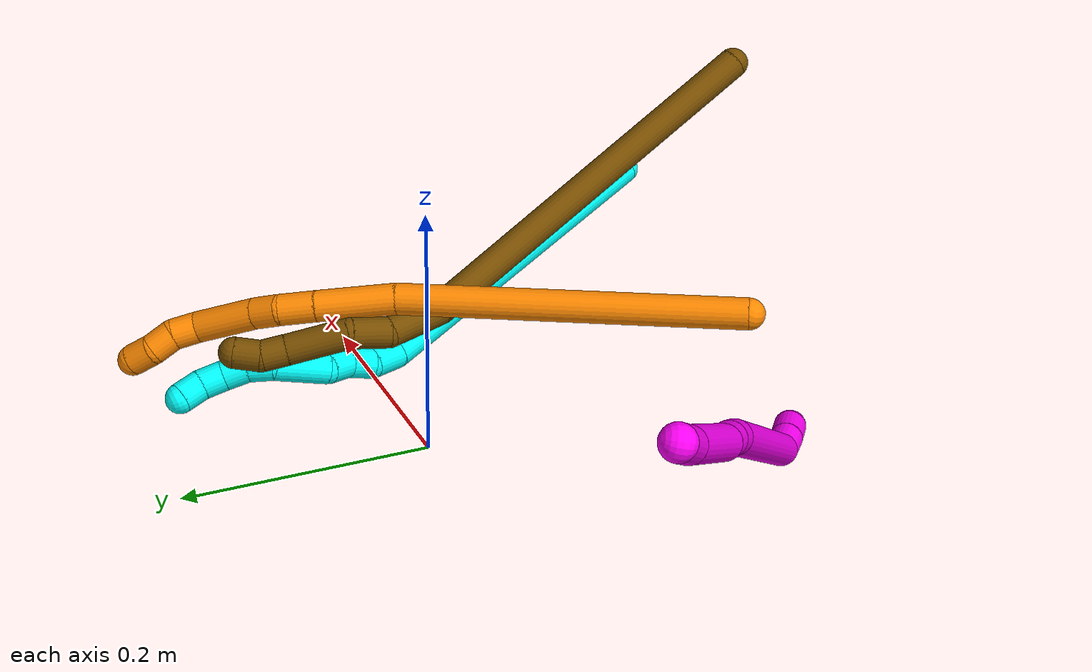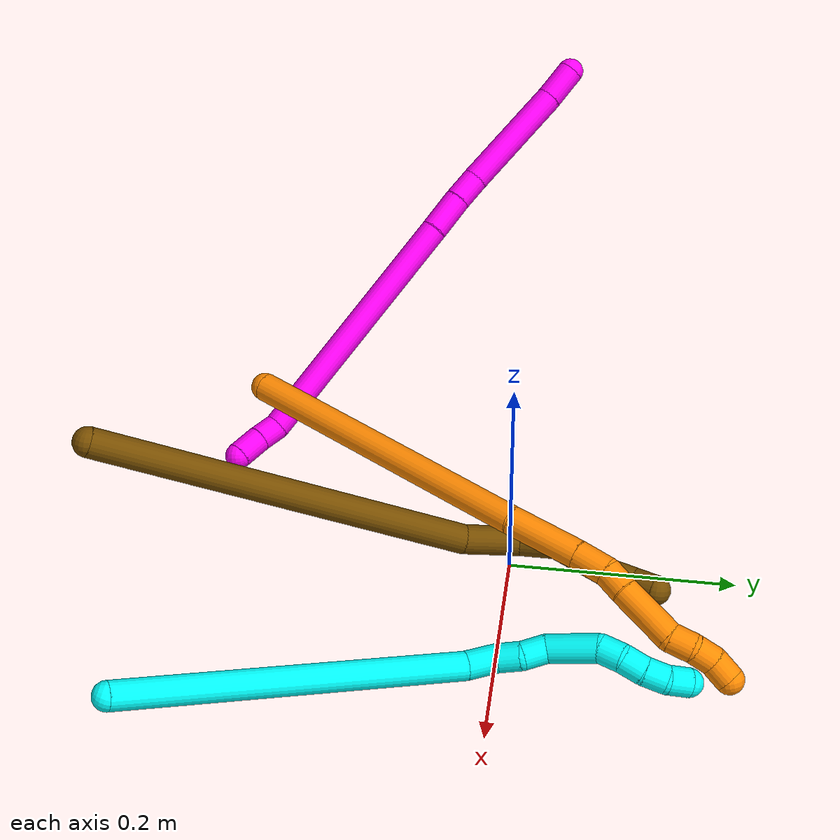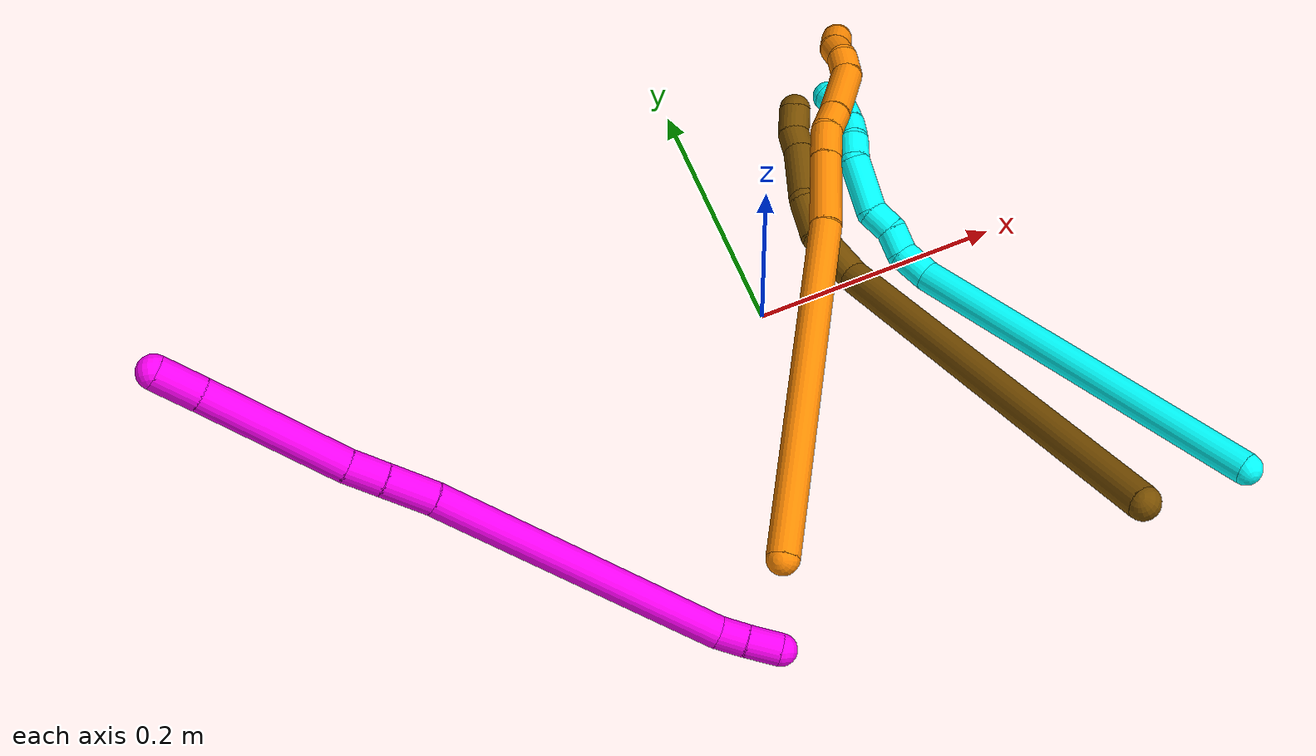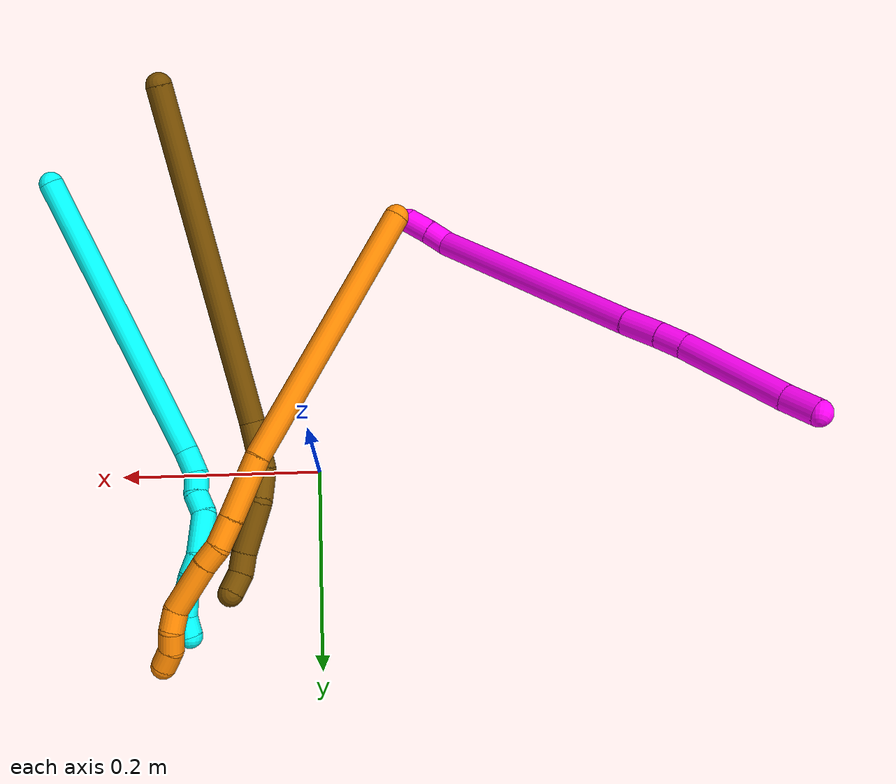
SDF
<sdf version="1.7">
 <world name="default">
  <model name="3">
   <static>0</static>
   <link name="3">
    <collision name="collision-cylinder-e_1_1_4">
     <pose>-0.061737 0.026901 -0.135378 -2.94543 -0.420601 2.27773</pose>
     <geometry><cylinder><radius>0.0125</radius><length>0.302406</length></cylinder></geometry>
     <surface>
      <friction><ode><mu>1.16</mu><mu2>1.16</mu2><slip1>0</slip1><slip2>0</slip2></ode></friction>
      <contact><ode><kp>1e+06</kp><kd>1</kd><max_vel>0</max_vel><min_depth>0.001</min_depth></ode></contact>
     </surface>
    </collision>
    <visual name="visual-cylinder-e_1_1_4">
     <pose>-0.061737 0.026901 -0.135378 -2.94543 -0.420601 2.27773</pose>
     <geometry><cylinder><radius>0.0125</radius><length>0.302406</length></cylinder></geometry>
     <material><ambient>0.003922 1 0.996078 1</ambient></material>
    </visual>
    <collision name="collision-cylinder-e_2_4_5">
     <pose>-0.127552 0.059668 -0.282516 -2.67899 -0.300785 1.14347</pose>
     <geometry><cylinder><radius>0.0125</radius><length>0.027519</length></cylinder></geometry>
     <surface>
      <friction><ode><mu>1.16</mu><mu2>1.16</mu2><slip1>0</slip1><slip2>0</slip2></ode></friction>
      <contact><ode><kp>1e+06</kp><kd>1</kd><max_vel>0</max_vel><min_depth>0.001</min_depth></ode></contact>
     </surface>
    </collision>
    <visual name="visual-cylinder-e_2_4_5">
     <pose>-0.127552 0.059668 -0.282516 -2.67899 -0.300785 1.14347</pose>
     <geometry><cylinder><radius>0.0125</radius><length>0.027519</length></cylinder></geometry>
     <material><ambient>0.003922 1 0.996078 1</ambient></material>
    </visual>
    <collision name="collision-cylinder-e_3_5_6">
     <pose>-0.130274 0.07104 -0.303441 -2.60047 0.126007 -0.447296</pose>
     <geometry><cylinder><radius>0.0125</radius><length>0.021557</length></cylinder></geometry>
     <surface>
      <friction><ode><mu>1.16</mu><mu2>1.16</mu2><slip1>0</slip1><slip2>0</slip2></ode></friction>
      <contact><ode><kp>1e+06</kp><kd>1</kd><max_vel>0</max_vel><min_depth>0.001</min_depth></ode></contact>
     </surface>
    </collision>
    <visual name="visual-cylinder-e_3_5_6">
     <pose>-0.130274 0.07104 -0.303441 -2.60047 0.126007 -0.447296</pose>
     <geometry><cylinder><radius>0.0125</radius><length>0.021557</length></cylinder></geometry>
     <material><ambient>0.003922 1 0.996078 1</ambient></material>
    </visual>
    <collision name="collision-cylinder-e_4_6_7">
     <pose>-0.131926 0.08194 -0.321656 -2.60429 -0.278089 0.940589</pose>
     <geometry><cylinder><radius>0.0125</radius><length>0.021911</length></cylinder></geometry>
     <surface>
      <friction><ode><mu>1.16</mu><mu2>1.16</mu2><slip1>0</slip1><slip2>0</slip2></ode></friction>
      <contact><ode><kp>1e+06</kp><kd>1</kd><max_vel>0</max_vel><min_depth>0.001</min_depth></ode></contact>
     </surface>
    </collision>
    <visual name="visual-cylinder-e_4_6_7">
     <pose>-0.131926 0.08194 -0.321656 -2.60429 -0.278089 0.940589</pose>
     <geometry><cylinder><radius>0.0125</radius><length>0.021911</length></cylinder></geometry>
     <material><ambient>0.003922 1 0.996078 1</ambient></material>
    </visual>
    <collision name="collision-cylinder-e_5_7_8">
     <pose>-0.129969 0.098059 -0.350254 -2.63971 0.219076 -0.810546</pose>
     <geometry><cylinder><radius>0.0125</radius><length>0.045687</length></cylinder></geometry>
     <surface>
      <friction><ode><mu>1.16</mu><mu2>1.16</mu2><slip1>0</slip1><slip2>0</slip2></ode></friction>
      <contact><ode><kp>1e+06</kp><kd>1</kd><max_vel>0</max_vel><min_depth>0.001</min_depth></ode></contact>
     </surface>
    </collision>
    <visual name="visual-cylinder-e_5_7_8">
     <pose>-0.129969 0.098059 -0.350254 -2.63971 0.219076 -0.810546</pose>
     <geometry><cylinder><radius>0.0125</radius><length>0.045687</length></cylinder></geometry>
     <material><ambient>0.003922 1 0.996078 1</ambient></material>
    </visual>
    <collision name="collision-cylinder-e_6_8_9">
     <pose>-0.120952 0.109809 -0.379103 -3.03204 0.408707 -2.62429</pose>
     <geometry><cylinder><radius>0.0125</radius><length>0.020394</length></cylinder></geometry>
     <surface>
      <friction><ode><mu>1.16</mu><mu2>1.16</mu2><slip1>0</slip1><slip2>0</slip2></ode></friction>
      <contact><ode><kp>1e+06</kp><kd>1</kd><max_vel>0</max_vel><min_depth>0.001</min_depth></ode></contact>
     </surface>
    </collision>
    <visual name="visual-cylinder-e_6_8_9">
     <pose>-0.120952 0.109809 -0.379103 -3.03204 0.408707 -2.62429</pose>
     <geometry><cylinder><radius>0.0125</radius><length>0.020394</length></cylinder></geometry>
     <material><ambient>0.003922 1 0.996078 1</ambient></material>
    </visual>
    <collision name="collision-cylinder-e_7_9_10">
     <pose>-0.114624 0.109588 -0.398258 3.01607 0.225199 2.12707</pose>
     <geometry><cylinder><radius>0.0125</radius><length>0.020378</length></cylinder></geometry>
     <surface>
      <friction><ode><mu>1.16</mu><mu2>1.16</mu2><slip1>0</slip1><slip2>0</slip2></ode></friction>
      <contact><ode><kp>1e+06</kp><kd>1</kd><max_vel>0</max_vel><min_depth>0.001</min_depth></ode></contact>
     </surface>
    </collision>
    <visual name="visual-cylinder-e_7_9_10">
     <pose>-0.114624 0.109588 -0.398258 3.01607 0.225199 2.12707</pose>
     <geometry><cylinder><radius>0.0125</radius><length>0.020378</length></cylinder></geometry>
     <material><ambient>0.003922 1 0.996078 1</ambient></material>
    </visual>
    <collision name="collision-cylinder-e_8_10_11">
     <pose>-0.111482 0.108258 -0.41812 3.1329 0.086389 2.94111</pose>
     <geometry><cylinder><radius>0.0125</radius><length>0.020095</length></cylinder></geometry>
     <surface>
      <friction><ode><mu>1.16</mu><mu2>1.16</mu2><slip1>0</slip1><slip2>0</slip2></ode></friction>
      <contact><ode><kp>1e+06</kp><kd>1</kd><max_vel>0</max_vel><min_depth>0.001</min_depth></ode></contact>
     </surface>
    </collision>
    <visual name="visual-cylinder-e_8_10_11">
     <pose>-0.111482 0.108258 -0.41812 3.1329 0.086389 2.94111</pose>
     <geometry><cylinder><radius>0.0125</radius><length>0.020095</length></cylinder></geometry>
     <material><ambient>0.003922 1 0.996078 1</ambient></material>
    </visual>
    <collision name="collision-cylinder-e_9_11_2">
     <pose>-0.113032 0.108838 -0.437839 -3.07294 -0.243431 2.59418</pose>
     <geometry><cylinder><radius>0.0125</radius><length>0.020055</length></cylinder></geometry>
     <surface>
      <friction><ode><mu>1.16</mu><mu2>1.16</mu2><slip1>0</slip1><slip2>0</slip2></ode></friction>
      <contact><ode><kp>1e+06</kp><kd>1</kd><max_vel>0</max_vel><min_depth>0.001</min_depth></ode></contact>
     </surface>
    </collision>
    <visual name="visual-cylinder-e_9_11_2">
     <pose>-0.113032 0.108838 -0.437839 -3.07294 -0.243431 2.59418</pose>
     <geometry><cylinder><radius>0.0125</radius><length>0.020055</length></cylinder></geometry>
     <material><ambient>0.003922 1 0.996078 1</ambient></material>
    </visual>
    <collision name="collision-sphere-2">
     <pose>-0.115449 0.109506 -0.447548 0 -0 0</pose>
     <geometry><sphere><radius>0.0125</radius></sphere></geometry>
     <surface>
      <friction><ode><mu>1.16</mu><mu2>1.16</mu2><slip1>0</slip1><slip2>0</slip2></ode></friction>
      <contact><ode><kp>1e+06</kp><kd>1</kd><max_vel>0</max_vel><min_depth>0.001</min_depth></ode></contact>
     </surface>
    </collision>
    <visual name="visual-sphere-2">
     <pose>-0.115449 0.109506 -0.447548 0 -0 0</pose>
     <geometry><sphere><radius>0.0125</radius></sphere></geometry>
     <material><ambient>0.003922 1 0.996078 1</ambient></material>
    </visual>
    <collision name="collision-sphere-11">
     <pose>-0.110615 0.108171 -0.42813 0 -0 0</pose>
     <geometry><sphere><radius>0.0125</radius></sphere></geometry>
     <surface>
      <friction><ode><mu>1.16</mu><mu2>1.16</mu2><slip1>0</slip1><slip2>0</slip2></ode></friction>
      <contact><ode><kp>1e+06</kp><kd>1</kd><max_vel>0</max_vel><min_depth>0.001</min_depth></ode></contact>
     </surface>
    </collision>
    <visual name="visual-sphere-11">
     <pose>-0.110615 0.108171 -0.42813 0 -0 0</pose>
     <geometry><sphere><radius>0.0125</radius></sphere></geometry>
     <material><ambient>0.003922 1 0.996078 1</ambient></material>
    </visual>
    <collision name="collision-sphere-10">
     <pose>-0.112349 0.108345 -0.408111 0 -0 0</pose>
     <geometry><sphere><radius>0.0125</radius></sphere></geometry>
     <surface>
      <friction><ode><mu>1.16</mu><mu2>1.16</mu2><slip1>0</slip1><slip2>0</slip2></ode></friction>
      <contact><ode><kp>1e+06</kp><kd>1</kd><max_vel>0</max_vel><min_depth>0.001</min_depth></ode></contact>
     </surface>
    </collision>
    <visual name="visual-sphere-10">
     <pose>-0.112349 0.108345 -0.408111 0 -0 0</pose>
     <geometry><sphere><radius>0.0125</radius></sphere></geometry>
     <material><ambient>0.003922 1 0.996078 1</ambient></material>
    </visual>
    <collision name="collision-sphere-9">
     <pose>-0.1169 0.110832 -0.388404 0 -0 0</pose>
     <geometry><sphere><radius>0.0125</radius></sphere></geometry>
     <surface>
      <friction><ode><mu>1.16</mu><mu2>1.16</mu2><slip1>0</slip1><slip2>0</slip2></ode></friction>
      <contact><ode><kp>1e+06</kp><kd>1</kd><max_vel>0</max_vel><min_depth>0.001</min_depth></ode></contact>
     </surface>
    </collision>
    <visual name="visual-sphere-9">
     <pose>-0.1169 0.110832 -0.388404 0 -0 0</pose>
     <geometry><sphere><radius>0.0125</radius></sphere></geometry>
     <material><ambient>0.003922 1 0.996078 1</ambient></material>
    </visual>
    <collision name="collision-sphere-4">
     <pose>-0.123475 0.053803 -0.270755 0 -0 0</pose>
     <geometry><sphere><radius>0.0125</radius></sphere></geometry>
     <surface>
      <friction><ode><mu>1.16</mu><mu2>1.16</mu2><slip1>0</slip1><slip2>0</slip2></ode></friction>
      <contact><ode><kp>1e+06</kp><kd>1</kd><max_vel>0</max_vel><min_depth>0.001</min_depth></ode></contact>
     </surface>
    </collision>
    <visual name="visual-sphere-4">
     <pose>-0.123475 0.053803 -0.270755 0 -0 0</pose>
     <geometry><sphere><radius>0.0125</radius></sphere></geometry>
     <material><ambient>0.003922 1 0.996078 1</ambient></material>
    </visual>
    <collision name="collision-sphere-1">
     <geometry><sphere><radius>0.0125</radius></sphere></geometry>
     <surface>
      <friction><ode><mu>1.16</mu><mu2>1.16</mu2><slip1>0</slip1><slip2>0</slip2></ode></friction>
      <contact><ode><kp>1e+06</kp><kd>1</kd><max_vel>0</max_vel><min_depth>0.001</min_depth></ode></contact>
     </surface>
    </collision>
    <visual name="visual-sphere-1">
     <geometry><sphere><radius>0.0125</radius></sphere></geometry>
     <material><ambient>0.003922 1 0.996078 1</ambient></material>
    </visual>
    <collision name="collision-sphere-8">
     <pose>-0.125005 0.108785 -0.369802 0 -0 0</pose>
     <geometry><sphere><radius>0.0125</radius></sphere></geometry>
     <surface>
      <friction><ode><mu>1.16</mu><mu2>1.16</mu2><slip1>0</slip1><slip2>0</slip2></ode></friction>
      <contact><ode><kp>1e+06</kp><kd>1</kd><max_vel>0</max_vel><min_depth>0.001</min_depth></ode></contact>
     </surface>
    </collision>
    <visual name="visual-sphere-8">
     <pose>-0.125005 0.108785 -0.369802 0 -0 0</pose>
     <geometry><sphere><radius>0.0125</radius></sphere></geometry>
     <material><ambient>0.003922 1 0.996078 1</ambient></material>
    </visual>
    <collision name="collision-sphere-5">
     <pose>-0.131628 0.065532 -0.294276 0 -0 0</pose>
     <geometry><sphere><radius>0.0125</radius></sphere></geometry>
     <surface>
      <friction><ode><mu>1.16</mu><mu2>1.16</mu2><slip1>0</slip1><slip2>0</slip2></ode></friction>
      <contact><ode><kp>1e+06</kp><kd>1</kd><max_vel>0</max_vel><min_depth>0.001</min_depth></ode></contact>
     </surface>
    </collision>
    <visual name="visual-sphere-5">
     <pose>-0.131628 0.065532 -0.294276 0 -0 0</pose>
     <geometry><sphere><radius>0.0125</radius></sphere></geometry>
     <material><ambient>0.003922 1 0.996078 1</ambient></material>
    </visual>
    <collision name="collision-sphere-6">
     <pose>-0.128919 0.076548 -0.312606 0 -0 0</pose>
     <geometry><sphere><radius>0.0125</radius></sphere></geometry>
     <surface>
      <friction><ode><mu>1.16</mu><mu2>1.16</mu2><slip1>0</slip1><slip2>0</slip2></ode></friction>
      <contact><ode><kp>1e+06</kp><kd>1</kd><max_vel>0</max_vel><min_depth>0.001</min_depth></ode></contact>
     </surface>
    </collision>
    <visual name="visual-sphere-6">
     <pose>-0.128919 0.076548 -0.312606 0 -0 0</pose>
     <geometry><sphere><radius>0.0125</radius></sphere></geometry>
     <material><ambient>0.003922 1 0.996078 1</ambient></material>
    </visual>
    <collision name="collision-sphere-7">
     <pose>-0.134934 0.087332 -0.330707 0 -0 0</pose>
     <geometry><sphere><radius>0.0125</radius></sphere></geometry>
     <surface>
      <friction><ode><mu>1.16</mu><mu2>1.16</mu2><slip1>0</slip1><slip2>0</slip2></ode></friction>
      <contact><ode><kp>1e+06</kp><kd>1</kd><max_vel>0</max_vel><min_depth>0.001</min_depth></ode></contact>
     </surface>
    </collision>
    <visual name="visual-sphere-7">
     <pose>-0.134934 0.087332 -0.330707 0 -0 0</pose>
     <geometry><sphere><radius>0.0125</radius></sphere></geometry>
     <material><ambient>0.003922 1 0.996078 1</ambient></material>
    </visual>
    <inertial>
     <pose>-0.086252 0.052829 -0.222668 0 -0 0</pose>
     <mass>0.5</mass>
     <inertia>
      <ixx>0.000229</ixx>
      <ixy>0</ixy>
      <ixz>0</ixz>
      <iyy>0.003227</iyy>
      <iyz>0</iyz>
      <izz>0.000489</izz>
     </inertia>
    </inertial>
   </link>
   <pose>0.262472 -0.288504 0.080603 1.24943 -0.292055 0.073301</pose>
  </model>
  <model name="10">
   <static>0</static>
   <link name="10">
    <collision name="collision-cylinder-e_1_1_4">
     <pose>-0.005451 0.010828 -0.004735 -1.983 -0.432194 0.647545</pose>
     <geometry><cylinder><radius>0.0125</radius><length>0.026029</length></cylinder></geometry>
     <surface>
      <friction><ode><mu>1.16</mu><mu2>1.16</mu2><slip1>0</slip1><slip2>0</slip2></ode></friction>
      <contact><ode><kp>1e+06</kp><kd>1</kd><max_vel>0</max_vel><min_depth>0.001</min_depth></ode></contact>
     </surface>
    </collision>
    <visual name="visual-cylinder-e_1_1_4">
     <pose>-0.005451 0.010828 -0.004735 -1.983 -0.432194 0.647545</pose>
     <geometry><cylinder><radius>0.0125</radius><length>0.026029</length></cylinder></geometry>
     <material><ambient>1 0 0.964706 1</ambient></material>
    </visual>
    <collision name="collision-cylinder-e_2_4_5">
     <pose>-0.016096 0.030688 -0.014173 -2.05098 -0.471599 0.75419</pose>
     <geometry><cylinder><radius>0.0125</radius><length>0.022863</length></cylinder></geometry>
     <surface>
      <friction><ode><mu>1.16</mu><mu2>1.16</mu2><slip1>0</slip1><slip2>0</slip2></ode></friction>
      <contact><ode><kp>1e+06</kp><kd>1</kd><max_vel>0</max_vel><min_depth>0.001</min_depth></ode></contact>
     </surface>
    </collision>
    <visual name="visual-cylinder-e_2_4_5">
     <pose>-0.016096 0.030688 -0.014173 -2.05098 -0.471599 0.75419</pose>
     <geometry><cylinder><radius>0.0125</radius><length>0.022863</length></cylinder></geometry>
     <material><ambient>1 0 0.964706 1</ambient></material>
    </visual>
    <collision name="collision-cylinder-e_3_5_6">
     <pose>-0.024485 0.14683 -0.07444 -2.04933 -0.026473 0.043552</pose>
     <geometry><cylinder><radius>0.0125</radius><length>0.241412</length></cylinder></geometry>
     <surface>
      <friction><ode><mu>1.16</mu><mu2>1.16</mu2><slip1>0</slip1><slip2>0</slip2></ode></friction>
      <contact><ode><kp>1e+06</kp><kd>1</kd><max_vel>0</max_vel><min_depth>0.001</min_depth></ode></contact>
     </surface>
    </collision>
    <visual name="visual-cylinder-e_3_5_6">
     <pose>-0.024485 0.14683 -0.07444 -2.04933 -0.026473 0.043552</pose>
     <geometry><cylinder><radius>0.0125</radius><length>0.241412</length></cylinder></geometry>
     <material><ambient>1 0 0.964706 1</ambient></material>
    </visual>
    <collision name="collision-cylinder-e_4_6_7">
     <pose>-0.029381 0.271209 -0.137689 -1.98955 -0.089785 0.13811</pose>
     <geometry><cylinder><radius>0.0125</radius><length>0.037956</length></cylinder></geometry>
     <surface>
      <friction><ode><mu>1.16</mu><mu2>1.16</mu2><slip1>0</slip1><slip2>0</slip2></ode></friction>
      <contact><ode><kp>1e+06</kp><kd>1</kd><max_vel>0</max_vel><min_depth>0.001</min_depth></ode></contact>
     </surface>
    </collision>
    <visual name="visual-cylinder-e_4_6_7">
     <pose>-0.029381 0.271209 -0.137689 -1.98955 -0.089785 0.13811</pose>
     <geometry><cylinder><radius>0.0125</radius><length>0.037956</length></cylinder></geometry>
     <material><ambient>1 0 0.964706 1</ambient></material>
    </visual>
    <collision name="collision-cylinder-e_5_7_8">
     <pose>-0.033053 0.300862 -0.151136 -2.00622 -0.143242 0.224061</pose>
     <geometry><cylinder><radius>0.0125</radius><length>0.027602</length></cylinder></geometry>
     <surface>
      <friction><ode><mu>1.16</mu><mu2>1.16</mu2><slip1>0</slip1><slip2>0</slip2></ode></friction>
      <contact><ode><kp>1e+06</kp><kd>1</kd><max_vel>0</max_vel><min_depth>0.001</min_depth></ode></contact>
     </surface>
    </collision>
    <visual name="visual-cylinder-e_5_7_8">
     <pose>-0.033053 0.300862 -0.151136 -2.00622 -0.143242 0.224061</pose>
     <geometry><cylinder><radius>0.0125</radius><length>0.027602</length></cylinder></geometry>
     <material><ambient>1 0 0.964706 1</ambient></material>
    </visual>
    <collision name="collision-cylinder-e_6_8_9">
     <pose>-0.039561 0.360976 -0.183888 -2.08546 -0.082571 0.141397</pose>
     <geometry><cylinder><radius>0.0125</radius><length>0.110038</length></cylinder></geometry>
     <surface>
      <friction><ode><mu>1.16</mu><mu2>1.16</mu2><slip1>0</slip1><slip2>0</slip2></ode></friction>
      <contact><ode><kp>1e+06</kp><kd>1</kd><max_vel>0</max_vel><min_depth>0.001</min_depth></ode></contact>
     </surface>
    </collision>
    <visual name="visual-cylinder-e_6_8_9">
     <pose>-0.039561 0.360976 -0.183888 -2.08546 -0.082571 0.141397</pose>
     <geometry><cylinder><radius>0.0125</radius><length>0.110038</length></cylinder></geometry>
     <material><ambient>1 0 0.964706 1</ambient></material>
    </visual>
    <collision name="collision-cylinder-e_7_9_2">
     <pose>-0.044494 0.423788 -0.218816 -2.05524 -0.023171 0.038374</pose>
     <geometry><cylinder><radius>0.0125</radius><length>0.0341</length></cylinder></geometry>
     <surface>
      <friction><ode><mu>1.16</mu><mu2>1.16</mu2><slip1>0</slip1><slip2>0</slip2></ode></friction>
      <contact><ode><kp>1e+06</kp><kd>1</kd><max_vel>0</max_vel><min_depth>0.001</min_depth></ode></contact>
     </surface>
    </collision>
    <visual name="visual-cylinder-e_7_9_2">
     <pose>-0.044494 0.423788 -0.218816 -2.05524 -0.023171 0.038374</pose>
     <geometry><cylinder><radius>0.0125</radius><length>0.0341</length></cylinder></geometry>
     <material><ambient>1 0 0.964706 1</ambient></material>
    </visual>
    <collision name="collision-sphere-2">
     <pose>-0.044889 0.438872 -0.226755 0 -0 0</pose>
     <geometry><sphere><radius>0.0125</radius></sphere></geometry>
     <surface>
      <friction><ode><mu>1.16</mu><mu2>1.16</mu2><slip1>0</slip1><slip2>0</slip2></ode></friction>
      <contact><ode><kp>1e+06</kp><kd>1</kd><max_vel>0</max_vel><min_depth>0.001</min_depth></ode></contact>
     </surface>
    </collision>
    <visual name="visual-sphere-2">
     <pose>-0.044889 0.438872 -0.226755 0 -0 0</pose>
     <geometry><sphere><radius>0.0125</radius></sphere></geometry>
     <material><ambient>1 0 0.964706 1</ambient></material>
    </visual>
    <collision name="collision-sphere-9">
     <pose>-0.044099 0.408704 -0.210878 0 -0 0</pose>
     <geometry><sphere><radius>0.0125</radius></sphere></geometry>
     <surface>
      <friction><ode><mu>1.16</mu><mu2>1.16</mu2><slip1>0</slip1><slip2>0</slip2></ode></friction>
      <contact><ode><kp>1e+06</kp><kd>1</kd><max_vel>0</max_vel><min_depth>0.001</min_depth></ode></contact>
     </surface>
    </collision>
    <visual name="visual-sphere-9">
     <pose>-0.044099 0.408704 -0.210878 0 -0 0</pose>
     <geometry><sphere><radius>0.0125</radius></sphere></geometry>
     <material><ambient>1 0 0.964706 1</ambient></material>
    </visual>
    <collision name="collision-sphere-4">
     <pose>-0.010903 0.021656 -0.009469 0 -0 0</pose>
     <geometry><sphere><radius>0.0125</radius></sphere></geometry>
     <surface>
      <friction><ode><mu>1.16</mu><mu2>1.16</mu2><slip1>0</slip1><slip2>0</slip2></ode></friction>
      <contact><ode><kp>1e+06</kp><kd>1</kd><max_vel>0</max_vel><min_depth>0.001</min_depth></ode></contact>
     </surface>
    </collision>
    <visual name="visual-sphere-4">
     <pose>-0.010903 0.021656 -0.009469 0 -0 0</pose>
     <geometry><sphere><radius>0.0125</radius></sphere></geometry>
     <material><ambient>1 0 0.964706 1</ambient></material>
    </visual>
    <collision name="collision-sphere-1">
     <geometry><sphere><radius>0.0125</radius></sphere></geometry>
     <surface>
      <friction><ode><mu>1.16</mu><mu2>1.16</mu2><slip1>0</slip1><slip2>0</slip2></ode></friction>
      <contact><ode><kp>1e+06</kp><kd>1</kd><max_vel>0</max_vel><min_depth>0.001</min_depth></ode></contact>
     </surface>
    </collision>
    <visual name="visual-sphere-1">
     <geometry><sphere><radius>0.0125</radius></sphere></geometry>
     <material><ambient>1 0 0.964706 1</ambient></material>
    </visual>
    <collision name="collision-sphere-8">
     <pose>-0.035023 0.313247 -0.156897 0 -0 0</pose>
     <geometry><sphere><radius>0.0125</radius></sphere></geometry>
     <surface>
      <friction><ode><mu>1.16</mu><mu2>1.16</mu2><slip1>0</slip1><slip2>0</slip2></ode></friction>
      <contact><ode><kp>1e+06</kp><kd>1</kd><max_vel>0</max_vel><min_depth>0.001</min_depth></ode></contact>
     </surface>
    </collision>
    <visual name="visual-sphere-8">
     <pose>-0.035023 0.313247 -0.156897 0 -0 0</pose>
     <geometry><sphere><radius>0.0125</radius></sphere></geometry>
     <material><ambient>1 0 0.964706 1</ambient></material>
    </visual>
    <collision name="collision-sphere-5">
     <pose>-0.02129 0.03972 -0.018878 0 -0 0</pose>
     <geometry><sphere><radius>0.0125</radius></sphere></geometry>
     <surface>
      <friction><ode><mu>1.16</mu><mu2>1.16</mu2><slip1>0</slip1><slip2>0</slip2></ode></friction>
      <contact><ode><kp>1e+06</kp><kd>1</kd><max_vel>0</max_vel><min_depth>0.001</min_depth></ode></contact>
     </surface>
    </collision>
    <visual name="visual-sphere-5">
     <pose>-0.02129 0.03972 -0.018878 0 -0 0</pose>
     <geometry><sphere><radius>0.0125</radius></sphere></geometry>
     <material><ambient>1 0 0.964706 1</ambient></material>
    </visual>
    <collision name="collision-sphere-6">
     <pose>-0.02768 0.25394 -0.130003 0 -0 0</pose>
     <geometry><sphere><radius>0.0125</radius></sphere></geometry>
     <surface>
      <friction><ode><mu>1.16</mu><mu2>1.16</mu2><slip1>0</slip1><slip2>0</slip2></ode></friction>
      <contact><ode><kp>1e+06</kp><kd>1</kd><max_vel>0</max_vel><min_depth>0.001</min_depth></ode></contact>
     </surface>
    </collision>
    <visual name="visual-sphere-6">
     <pose>-0.02768 0.25394 -0.130003 0 -0 0</pose>
     <geometry><sphere><radius>0.0125</radius></sphere></geometry>
     <material><ambient>1 0 0.964706 1</ambient></material>
    </visual>
    <collision name="collision-sphere-7">
     <pose>-0.031083 0.288477 -0.145375 0 -0 0</pose>
     <geometry><sphere><radius>0.0125</radius></sphere></geometry>
     <surface>
      <friction><ode><mu>1.16</mu><mu2>1.16</mu2><slip1>0</slip1><slip2>0</slip2></ode></friction>
      <contact><ode><kp>1e+06</kp><kd>1</kd><max_vel>0</max_vel><min_depth>0.001</min_depth></ode></contact>
     </surface>
    </collision>
    <visual name="visual-sphere-7">
     <pose>-0.031083 0.288477 -0.145375 0 -0 0</pose>
     <geometry><sphere><radius>0.0125</radius></sphere></geometry>
     <material><ambient>1 0 0.964706 1</ambient></material>
    </visual>
    <inertial>
     <pose>-0.028638 0.218401 -0.111024 0 -0 0</pose>
     <mass>0.5</mass>
     <inertia>
      <ixx>0.001379</ixx>
      <ixy>0</ixy>
      <ixz>0</ixz>
      <iyy>-0.000497</iyy>
      <iyz>0</iyz>
      <izz>-0.001138</izz>
     </inertia>
    </inertial>
   </link>
   <pose>-0.098565 -0.264105 0.014667 2.03055 -0.994691 -0.657151</pose>
  </model>
  <model name="12">
   <static>0</static>
   <link name="12">
    <collision name="collision-cylinder-e_1_1_4">
     <pose>-0.058411 0.148785 -0.035449 -1.80469 -0.364802 0.458895</pose>
     <geometry><cylinder><radius>0.0125</radius><length>0.327448</length></cylinder></geometry>
     <surface>
      <friction><ode><mu>1.16</mu><mu2>1.16</mu2><slip1>0</slip1><slip2>0</slip2></ode></friction>
      <contact><ode><kp>1e+06</kp><kd>1</kd><max_vel>0</max_vel><min_depth>0.001</min_depth></ode></contact>
     </surface>
    </collision>
    <visual name="visual-cylinder-e_1_1_4">
     <pose>-0.058411 0.148785 -0.035449 -1.80469 -0.364802 0.458895</pose>
     <geometry><cylinder><radius>0.0125</radius><length>0.327448</length></cylinder></geometry>
     <material><ambient>0.466667 0.301961 0 1</ambient></material>
    </visual>
    <collision name="collision-cylinder-e_2_4_5">
     <pose>-0.122913 0.320852 -0.069364 -1.50498 -0.255351 0.239236</pose>
     <geometry><cylinder><radius>0.0125</radius><length>0.048228</length></cylinder></geometry>
     <surface>
      <friction><ode><mu>1.16</mu><mu2>1.16</mu2><slip1>0</slip1><slip2>0</slip2></ode></friction>
      <contact><ode><kp>1e+06</kp><kd>1</kd><max_vel>0</max_vel><min_depth>0.001</min_depth></ode></contact>
     </surface>
    </collision>
    <visual name="visual-cylinder-e_2_4_5">
     <pose>-0.122913 0.320852 -0.069364 -1.50498 -0.255351 0.239236</pose>
     <geometry><cylinder><radius>0.0125</radius><length>0.048228</length></cylinder></geometry>
     <material><ambient>0.466667 0.301961 0 1</ambient></material>
    </visual>
    <collision name="collision-cylinder-e_3_5_6">
     <pose>-0.126842 0.359355 -0.064985 -1.38606 0.1387 -0.115239</pose>
     <geometry><cylinder><radius>0.0125</radius><length>0.03127</length></cylinder></geometry>
     <surface>
      <friction><ode><mu>1.16</mu><mu2>1.16</mu2><slip1>0</slip1><slip2>0</slip2></ode></friction>
      <contact><ode><kp>1e+06</kp><kd>1</kd><max_vel>0</max_vel><min_depth>0.001</min_depth></ode></contact>
     </surface>
    </collision>
    <visual name="visual-cylinder-e_3_5_6">
     <pose>-0.126842 0.359355 -0.064985 -1.38606 0.1387 -0.115239</pose>
     <geometry><cylinder><radius>0.0125</radius><length>0.03127</length></cylinder></geometry>
     <material><ambient>0.466667 0.301961 0 1</ambient></material>
    </visual>
    <collision name="collision-cylinder-e_4_6_7">
     <pose>-0.119552 0.398821 -0.068347 -1.82142 0.20213 -0.259814</pose>
     <geometry><cylinder><radius>0.0125</radius><length>0.051092</length></cylinder></geometry>
     <surface>
      <friction><ode><mu>1.16</mu><mu2>1.16</mu2><slip1>0</slip1><slip2>0</slip2></ode></friction>
      <contact><ode><kp>1e+06</kp><kd>1</kd><max_vel>0</max_vel><min_depth>0.001</min_depth></ode></contact>
     </surface>
    </collision>
    <visual name="visual-cylinder-e_4_6_7">
     <pose>-0.119552 0.398821 -0.068347 -1.82142 0.20213 -0.259814</pose>
     <geometry><cylinder><radius>0.0125</radius><length>0.051092</length></cylinder></geometry>
     <material><ambient>0.466667 0.301961 0 1</ambient></material>
    </visual>
    <collision name="collision-cylinder-e_5_7_8">
     <pose>-0.113316 0.43321 -0.075652 -1.67858 0.108032 -0.120323</pose>
     <geometry><cylinder><radius>0.0125</radius><length>0.020529</length></cylinder></geometry>
     <surface>
      <friction><ode><mu>1.16</mu><mu2>1.16</mu2><slip1>0</slip1><slip2>0</slip2></ode></friction>
      <contact><ode><kp>1e+06</kp><kd>1</kd><max_vel>0</max_vel><min_depth>0.001</min_depth></ode></contact>
     </surface>
    </collision>
    <visual name="visual-cylinder-e_5_7_8">
     <pose>-0.113316 0.43321 -0.075652 -1.67858 0.108032 -0.120323</pose>
     <geometry><cylinder><radius>0.0125</radius><length>0.020529</length></cylinder></geometry>
     <material><ambient>0.466667 0.301961 0 1</ambient></material>
    </visual>
    <collision name="collision-cylinder-e_6_8_2">
     <pose>-0.107485 0.452956 -0.07616 -1.50944 0.456528 -0.430197</pose>
     <geometry><cylinder><radius>0.0125</radius><length>0.021433</length></cylinder></geometry>
     <surface>
      <friction><ode><mu>1.16</mu><mu2>1.16</mu2><slip1>0</slip1><slip2>0</slip2></ode></friction>
      <contact><ode><kp>1e+06</kp><kd>1</kd><max_vel>0</max_vel><min_depth>0.001</min_depth></ode></contact>
     </surface>
    </collision>
    <visual name="visual-cylinder-e_6_8_2">
     <pose>-0.107485 0.452956 -0.07616 -1.50944 0.456528 -0.430197</pose>
     <geometry><cylinder><radius>0.0125</radius><length>0.021433</length></cylinder></geometry>
     <material><ambient>0.466667 0.301961 0 1</ambient></material>
    </visual>
    <collision name="collision-sphere-2">
     <pose>-0.102761 0.462557 -0.07557 0 -0 0</pose>
     <geometry><sphere><radius>0.0125</radius></sphere></geometry>
     <surface>
      <friction><ode><mu>1.16</mu><mu2>1.16</mu2><slip1>0</slip1><slip2>0</slip2></ode></friction>
      <contact><ode><kp>1e+06</kp><kd>1</kd><max_vel>0</max_vel><min_depth>0.001</min_depth></ode></contact>
     </surface>
    </collision>
    <visual name="visual-sphere-2">
     <pose>-0.102761 0.462557 -0.07557 0 -0 0</pose>
     <geometry><sphere><radius>0.0125</radius></sphere></geometry>
     <material><ambient>0.466667 0.301961 0 1</ambient></material>
    </visual>
    <collision name="collision-sphere-4">
     <pose>-0.116822 0.297571 -0.070898 0 -0 0</pose>
     <geometry><sphere><radius>0.0125</radius></sphere></geometry>
     <surface>
      <friction><ode><mu>1.16</mu><mu2>1.16</mu2><slip1>0</slip1><slip2>0</slip2></ode></friction>
      <contact><ode><kp>1e+06</kp><kd>1</kd><max_vel>0</max_vel><min_depth>0.001</min_depth></ode></contact>
     </surface>
    </collision>
    <visual name="visual-sphere-4">
     <pose>-0.116822 0.297571 -0.070898 0 -0 0</pose>
     <geometry><sphere><radius>0.0125</radius></sphere></geometry>
     <material><ambient>0.466667 0.301961 0 1</ambient></material>
    </visual>
    <collision name="collision-sphere-1">
     <geometry><sphere><radius>0.0125</radius></sphere></geometry>
     <surface>
      <friction><ode><mu>1.16</mu><mu2>1.16</mu2><slip1>0</slip1><slip2>0</slip2></ode></friction>
      <contact><ode><kp>1e+06</kp><kd>1</kd><max_vel>0</max_vel><min_depth>0.001</min_depth></ode></contact>
     </surface>
    </collision>
    <visual name="visual-sphere-1">
     <geometry><sphere><radius>0.0125</radius></sphere></geometry>
     <material><ambient>0.466667 0.301961 0 1</ambient></material>
    </visual>
    <collision name="collision-sphere-8">
     <pose>-0.11221 0.443356 -0.07675 0 -0 0</pose>
     <geometry><sphere><radius>0.0125</radius></sphere></geometry>
     <surface>
      <friction><ode><mu>1.16</mu><mu2>1.16</mu2><slip1>0</slip1><slip2>0</slip2></ode></friction>
      <contact><ode><kp>1e+06</kp><kd>1</kd><max_vel>0</max_vel><min_depth>0.001</min_depth></ode></contact>
     </surface>
    </collision>
    <visual name="visual-sphere-8">
     <pose>-0.11221 0.443356 -0.07675 0 -0 0</pose>
     <geometry><sphere><radius>0.0125</radius></sphere></geometry>
     <material><ambient>0.466667 0.301961 0 1</ambient></material>
    </visual>
    <collision name="collision-sphere-5">
     <pose>-0.129003 0.344134 -0.067829 0 -0 0</pose>
     <geometry><sphere><radius>0.0125</radius></sphere></geometry>
     <surface>
      <friction><ode><mu>1.16</mu><mu2>1.16</mu2><slip1>0</slip1><slip2>0</slip2></ode></friction>
      <contact><ode><kp>1e+06</kp><kd>1</kd><max_vel>0</max_vel><min_depth>0.001</min_depth></ode></contact>
     </surface>
    </collision>
    <visual name="visual-sphere-5">
     <pose>-0.129003 0.344134 -0.067829 0 -0 0</pose>
     <geometry><sphere><radius>0.0125</radius></sphere></geometry>
     <material><ambient>0.466667 0.301961 0 1</ambient></material>
    </visual>
    <collision name="collision-sphere-6">
     <pose>-0.12468 0.374577 -0.062141 0 -0 0</pose>
     <geometry><sphere><radius>0.0125</radius></sphere></geometry>
     <surface>
      <friction><ode><mu>1.16</mu><mu2>1.16</mu2><slip1>0</slip1><slip2>0</slip2></ode></friction>
      <contact><ode><kp>1e+06</kp><kd>1</kd><max_vel>0</max_vel><min_depth>0.001</min_depth></ode></contact>
     </surface>
    </collision>
    <visual name="visual-sphere-6">
     <pose>-0.12468 0.374577 -0.062141 0 -0 0</pose>
     <geometry><sphere><radius>0.0125</radius></sphere></geometry>
     <material><ambient>0.466667 0.301961 0 1</ambient></material>
    </visual>
    <collision name="collision-sphere-7">
     <pose>-0.114423 0.423064 -0.074554 0 -0 0</pose>
     <geometry><sphere><radius>0.0125</radius></sphere></geometry>
     <surface>
      <friction><ode><mu>1.16</mu><mu2>1.16</mu2><slip1>0</slip1><slip2>0</slip2></ode></friction>
      <contact><ode><kp>1e+06</kp><kd>1</kd><max_vel>0</max_vel><min_depth>0.001</min_depth></ode></contact>
     </surface>
    </collision>
    <visual name="visual-sphere-7">
     <pose>-0.114423 0.423064 -0.074554 0 -0 0</pose>
     <geometry><sphere><radius>0.0125</radius></sphere></geometry>
     <material><ambient>0.466667 0.301961 0 1</ambient></material>
    </visual>
    <inertial>
     <pose>-0.079518 0.228817 -0.047325 0 -0 0</pose>
     <mass>0.5</mass>
     <inertia>
      <ixx>0.003697</ixx>
      <ixy>0</ixy>
      <ixz>0</ixz>
      <iyy>0.001091</iyy>
      <iyz>0</iyz>
      <izz>-0.001659</izz>
     </inertia>
    </inertial>
   </link>
   <pose>0.131044 -0.322288 0.224655 -0.113928 -0.354856 -0.008949</pose>
  </model>
  <model name="19">
   <static>0</static>
   <link name="19">
    <collision name="collision-cylinder-e_1_1_4">
     <pose>0.058783 0.107561 -0.059956 -2.07931 0.445368 -0.735819</pose>
     <geometry><cylinder><radius>0.0125</radius><length>0.272907</length></cylinder></geometry>
     <surface>
      <friction><ode><mu>1.16</mu><mu2>1.16</mu2><slip1>0</slip1><slip2>0</slip2></ode></friction>
      <contact><ode><kp>1e+06</kp><kd>1</kd><max_vel>0</max_vel><min_depth>0.001</min_depth></ode></contact>
     </surface>
    </collision>
    <visual name="visual-cylinder-e_1_1_4">
     <pose>0.058783 0.107561 -0.059956 -2.07931 0.445368 -0.735819</pose>
     <geometry><cylinder><radius>0.0125</radius><length>0.272907</length></cylinder></geometry>
     <material><ambient>0.996078 0.537255 0 1</ambient></material>
    </visual>
    <collision name="collision-cylinder-e_2_4_5">
     <pose>0.127083 0.241008 -0.135428 -2.11079 0.305485 -0.530694</pose>
     <geometry><cylinder><radius>0.0125</radius><length>0.063289</length></cylinder></geometry>
     <surface>
      <friction><ode><mu>1.16</mu><mu2>1.16</mu2><slip1>0</slip1><slip2>0</slip2></ode></friction>
      <contact><ode><kp>1e+06</kp><kd>1</kd><max_vel>0</max_vel><min_depth>0.001</min_depth></ode></contact>
     </surface>
    </collision>
    <visual name="visual-cylinder-e_2_4_5">
     <pose>0.127083 0.241008 -0.135428 -2.11079 0.305485 -0.530694</pose>
     <geometry><cylinder><radius>0.0125</radius><length>0.063289</length></cylinder></geometry>
     <material><ambient>0.996078 0.537255 0 1</ambient></material>
    </visual>
    <collision name="collision-cylinder-e_3_5_6">
     <pose>0.141131 0.278392 -0.158528 -2.15387 0.317794 -0.578617</pose>
     <geometry><cylinder><radius>0.0125</radius><length>0.029</length></cylinder></geometry>
     <surface>
      <friction><ode><mu>1.16</mu><mu2>1.16</mu2><slip1>0</slip1><slip2>0</slip2></ode></friction>
      <contact><ode><kp>1e+06</kp><kd>1</kd><max_vel>0</max_vel><min_depth>0.001</min_depth></ode></contact>
     </surface>
    </collision>
    <visual name="visual-cylinder-e_3_5_6">
     <pose>0.141131 0.278392 -0.158528 -2.15387 0.317794 -0.578617</pose>
     <geometry><cylinder><radius>0.0125</radius><length>0.029</length></cylinder></geometry>
     <material><ambient>0.996078 0.537255 0 1</ambient></material>
    </visual>
    <collision name="collision-cylinder-e_4_6_7">
     <pose>0.150305 0.296068 -0.173709 -2.4589 0.44278 -1.12948</pose>
     <geometry><cylinder><radius>0.0125</radius><length>0.021674</length></cylinder></geometry>
     <surface>
      <friction><ode><mu>1.16</mu><mu2>1.16</mu2><slip1>0</slip1><slip2>0</slip2></ode></friction>
      <contact><ode><kp>1e+06</kp><kd>1</kd><max_vel>0</max_vel><min_depth>0.001</min_depth></ode></contact>
     </surface>
    </collision>
    <visual name="visual-cylinder-e_4_6_7">
     <pose>0.150305 0.296068 -0.173709 -2.4589 0.44278 -1.12948</pose>
     <geometry><cylinder><radius>0.0125</radius><length>0.021674</length></cylinder></geometry>
     <material><ambient>0.996078 0.537255 0 1</ambient></material>
    </visual>
    <collision name="collision-cylinder-e_5_7_8">
     <pose>0.163621 0.318057 -0.200191 -2.44452 0.338548 -0.87929</pose>
     <geometry><cylinder><radius>0.0125</radius><length>0.052224</length></cylinder></geometry>
     <surface>
      <friction><ode><mu>1.16</mu><mu2>1.16</mu2><slip1>0</slip1><slip2>0</slip2></ode></friction>
      <contact><ode><kp>1e+06</kp><kd>1</kd><max_vel>0</max_vel><min_depth>0.001</min_depth></ode></contact>
     </surface>
    </collision>
    <visual name="visual-cylinder-e_5_7_8">
     <pose>0.163621 0.318057 -0.200191 -2.44452 0.338548 -0.87929</pose>
     <geometry><cylinder><radius>0.0125</radius><length>0.052224</length></cylinder></geometry>
     <material><ambient>0.996078 0.537255 0 1</ambient></material>
    </visual>
    <collision name="collision-cylinder-e_6_8_9">
     <pose>0.173192 0.342538 -0.224676 -2.14437 0.086868 -0.1593</pose>
     <geometry><cylinder><radius>0.0125</radius><length>0.02072</length></cylinder></geometry>
     <surface>
      <friction><ode><mu>1.16</mu><mu2>1.16</mu2><slip1>0</slip1><slip2>0</slip2></ode></friction>
      <contact><ode><kp>1e+06</kp><kd>1</kd><max_vel>0</max_vel><min_depth>0.001</min_depth></ode></contact>
     </surface>
    </collision>
    <visual name="visual-cylinder-e_6_8_9">
     <pose>0.173192 0.342538 -0.224676 -2.14437 0.086868 -0.1593</pose>
     <geometry><cylinder><radius>0.0125</radius><length>0.02072</length></cylinder></geometry>
     <material><ambient>0.996078 0.537255 0 1</ambient></material>
    </visual>
    <collision name="collision-cylinder-e_7_9_10">
     <pose>0.172299 0.358215 -0.237189 -2.34943 -0.179975 0.425025</pose>
     <geometry><cylinder><radius>0.0125</radius><length>0.020011</length></cylinder></geometry>
     <surface>
      <friction><ode><mu>1.16</mu><mu2>1.16</mu2><slip1>0</slip1><slip2>0</slip2></ode></friction>
      <contact><ode><kp>1e+06</kp><kd>1</kd><max_vel>0</max_vel><min_depth>0.001</min_depth></ode></contact>
     </surface>
    </collision>
    <visual name="visual-cylinder-e_7_9_10">
     <pose>0.172299 0.358215 -0.237189 -2.34943 -0.179975 0.425025</pose>
     <geometry><cylinder><radius>0.0125</radius><length>0.020011</length></cylinder></geometry>
     <material><ambient>0.996078 0.537255 0 1</ambient></material>
    </visual>
    <collision name="collision-cylinder-e_8_10_2">
     <pose>0.171918 0.370703 -0.252453 -2.56082 0.140162 -0.461432</pose>
     <geometry><cylinder><radius>0.0125</radius><length>0.020174</length></cylinder></geometry>
     <surface>
      <friction><ode><mu>1.16</mu><mu2>1.16</mu2><slip1>0</slip1><slip2>0</slip2></ode></friction>
      <contact><ode><kp>1e+06</kp><kd>1</kd><max_vel>0</max_vel><min_depth>0.001</min_depth></ode></contact>
     </surface>
    </collision>
    <visual name="visual-cylinder-e_8_10_2">
     <pose>0.171918 0.370703 -0.252453 -2.56082 0.140162 -0.461432</pose>
     <geometry><cylinder><radius>0.0125</radius><length>0.020174</length></cylinder></geometry>
     <material><ambient>0.996078 0.537255 0 1</ambient></material>
    </visual>
    <collision name="collision-sphere-2">
     <pose>0.173327 0.376183 -0.260804 0 -0 0</pose>
     <geometry><sphere><radius>0.0125</radius></sphere></geometry>
     <surface>
      <friction><ode><mu>1.16</mu><mu2>1.16</mu2><slip1>0</slip1><slip2>0</slip2></ode></friction>
      <contact><ode><kp>1e+06</kp><kd>1</kd><max_vel>0</max_vel><min_depth>0.001</min_depth></ode></contact>
     </surface>
    </collision>
    <visual name="visual-sphere-2">
     <pose>0.173327 0.376183 -0.260804 0 -0 0</pose>
     <geometry><sphere><radius>0.0125</radius></sphere></geometry>
     <material><ambient>0.996078 0.537255 0 1</ambient></material>
    </visual>
    <collision name="collision-sphere-10">
     <pose>0.170508 0.365222 -0.244103 0 -0 0</pose>
     <geometry><sphere><radius>0.0125</radius></sphere></geometry>
     <surface>
      <friction><ode><mu>1.16</mu><mu2>1.16</mu2><slip1>0</slip1><slip2>0</slip2></ode></friction>
      <contact><ode><kp>1e+06</kp><kd>1</kd><max_vel>0</max_vel><min_depth>0.001</min_depth></ode></contact>
     </surface>
    </collision>
    <visual name="visual-sphere-10">
     <pose>0.170508 0.365222 -0.244103 0 -0 0</pose>
     <geometry><sphere><radius>0.0125</radius></sphere></geometry>
     <material><ambient>0.996078 0.537255 0 1</ambient></material>
    </visual>
    <collision name="collision-sphere-9">
     <pose>0.17409 0.351207 -0.230276 0 -0 0</pose>
     <geometry><sphere><radius>0.0125</radius></sphere></geometry>
     <surface>
      <friction><ode><mu>1.16</mu><mu2>1.16</mu2><slip1>0</slip1><slip2>0</slip2></ode></friction>
      <contact><ode><kp>1e+06</kp><kd>1</kd><max_vel>0</max_vel><min_depth>0.001</min_depth></ode></contact>
     </surface>
    </collision>
    <visual name="visual-sphere-9">
     <pose>0.17409 0.351207 -0.230276 0 -0 0</pose>
     <geometry><sphere><radius>0.0125</radius></sphere></geometry>
     <material><ambient>0.996078 0.537255 0 1</ambient></material>
    </visual>
    <collision name="collision-sphere-4">
     <pose>0.117565 0.215123 -0.119911 0 -0 0</pose>
     <geometry><sphere><radius>0.0125</radius></sphere></geometry>
     <surface>
      <friction><ode><mu>1.16</mu><mu2>1.16</mu2><slip1>0</slip1><slip2>0</slip2></ode></friction>
      <contact><ode><kp>1e+06</kp><kd>1</kd><max_vel>0</max_vel><min_depth>0.001</min_depth></ode></contact>
     </surface>
    </collision>
    <visual name="visual-sphere-4">
     <pose>0.117565 0.215123 -0.119911 0 -0 0</pose>
     <geometry><sphere><radius>0.0125</radius></sphere></geometry>
     <material><ambient>0.996078 0.537255 0 1</ambient></material>
    </visual>
    <collision name="collision-sphere-1">
     <geometry><sphere><radius>0.0125</radius></sphere></geometry>
     <surface>
      <friction><ode><mu>1.16</mu><mu2>1.16</mu2><slip1>0</slip1><slip2>0</slip2></ode></friction>
      <contact><ode><kp>1e+06</kp><kd>1</kd><max_vel>0</max_vel><min_depth>0.001</min_depth></ode></contact>
     </surface>
    </collision>
    <visual name="visual-sphere-1">
     <geometry><sphere><radius>0.0125</radius></sphere></geometry>
     <material><ambient>0.996078 0.537255 0 1</ambient></material>
    </visual>
    <collision name="collision-sphere-8">
     <pose>0.172293 0.333869 -0.219075 0 -0 0</pose>
     <geometry><sphere><radius>0.0125</radius></sphere></geometry>
     <surface>
      <friction><ode><mu>1.16</mu><mu2>1.16</mu2><slip1>0</slip1><slip2>0</slip2></ode></friction>
      <contact><ode><kp>1e+06</kp><kd>1</kd><max_vel>0</max_vel><min_depth>0.001</min_depth></ode></contact>
     </surface>
    </collision>
    <visual name="visual-sphere-8">
     <pose>0.172293 0.333869 -0.219075 0 -0 0</pose>
     <geometry><sphere><radius>0.0125</radius></sphere></geometry>
     <material><ambient>0.996078 0.537255 0 1</ambient></material>
    </visual>
    <collision name="collision-sphere-5">
     <pose>0.1366 0.266893 -0.150944 0 -0 0</pose>
     <geometry><sphere><radius>0.0125</radius></sphere></geometry>
     <surface>
      <friction><ode><mu>1.16</mu><mu2>1.16</mu2><slip1>0</slip1><slip2>0</slip2></ode></friction>
      <contact><ode><kp>1e+06</kp><kd>1</kd><max_vel>0</max_vel><min_depth>0.001</min_depth></ode></contact>
     </surface>
    </collision>
    <visual name="visual-sphere-5">
     <pose>0.1366 0.266893 -0.150944 0 -0 0</pose>
     <geometry><sphere><radius>0.0125</radius></sphere></geometry>
     <material><ambient>0.996078 0.537255 0 1</ambient></material>
    </visual>
    <collision name="collision-sphere-6">
     <pose>0.145662 0.28989 -0.166112 0 -0 0</pose>
     <geometry><sphere><radius>0.0125</radius></sphere></geometry>
     <surface>
      <friction><ode><mu>1.16</mu><mu2>1.16</mu2><slip1>0</slip1><slip2>0</slip2></ode></friction>
      <contact><ode><kp>1e+06</kp><kd>1</kd><max_vel>0</max_vel><min_depth>0.001</min_depth></ode></contact>
     </surface>
    </collision>
    <visual name="visual-sphere-6">
     <pose>0.145662 0.28989 -0.166112 0 -0 0</pose>
     <geometry><sphere><radius>0.0125</radius></sphere></geometry>
     <material><ambient>0.996078 0.537255 0 1</ambient></material>
    </visual>
    <collision name="collision-sphere-7">
     <pose>0.154948 0.302245 -0.181306 0 -0 0</pose>
     <geometry><sphere><radius>0.0125</radius></sphere></geometry>
     <surface>
      <friction><ode><mu>1.16</mu><mu2>1.16</mu2><slip1>0</slip1><slip2>0</slip2></ode></friction>
      <contact><ode><kp>1e+06</kp><kd>1</kd><max_vel>0</max_vel><min_depth>0.001</min_depth></ode></contact>
     </surface>
    </collision>
    <visual name="visual-sphere-7">
     <pose>0.154948 0.302245 -0.181306 0 -0 0</pose>
     <geometry><sphere><radius>0.0125</radius></sphere></geometry>
     <material><ambient>0.996078 0.537255 0 1</ambient></material>
    </visual>
    <inertial>
     <pose>0.100971 0.194905 -0.116491 0 -0 0</pose>
     <mass>0.5</mass>
     <inertia>
      <ixx>0.000132</ixx>
      <ixy>0</ixy>
      <ixz>0</ixz>
      <iyy>-0.001228</iyy>
      <iyz>0</iyz>
      <izz>-0.002146</izz>
     </inertia>
    </inertial>
   </link>
   <pose>-0.084734 -0.230365 0.112877 0.236607 -0.463304 -0.013962</pose>
  </model>
 </world>
</sdf>
